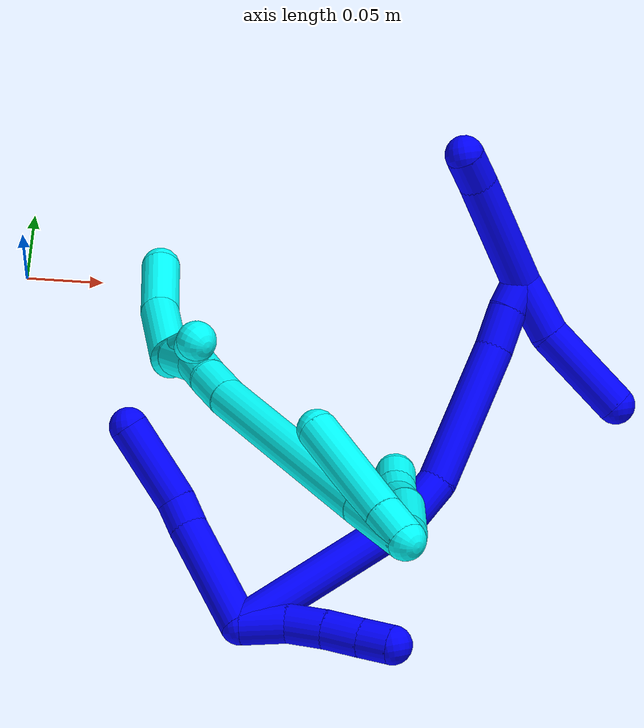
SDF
<sdf version="1.7">
 <world name="default">
  <model name="1">
   <static>0</static>
   <link name="1">
    <collision name="collision-cylinder-e_1_2_8">
     <pose>0.017399 0.005508 -0.032552 -2.97398 0.485023 -2.48688</pose>
     <geometry><cylinder><radius>0.0125</radius><length>0.074638</length></cylinder></geometry>
     <surface>
      <friction><ode><mu>1.16</mu><mu2>1.16</mu2><slip1>0</slip1><slip2>0</slip2></ode></friction>
      <contact><ode><kp>1e+06</kp><kd>1</kd><max_vel>0</max_vel><min_depth>0.001</min_depth></ode></contact>
     </surface>
    </collision>
    <visual name="visual-cylinder-e_1_2_8">
     <pose>0.017399 0.005508 -0.032552 -2.97398 0.485023 -2.48688</pose>
     <geometry><cylinder><radius>0.0125</radius><length>0.074638</length></cylinder></geometry>
     <material><ambient>0 0 1 1</ambient></material>
    </visual>
    <collision name="collision-cylinder-e_2_8_9">
     <pose>0.03836 0.011731 -0.074585 -3.06633 0.358412 -2.73175</pose>
     <geometry><cylinder><radius>0.0125</radius><length>0.020306</length></cylinder></geometry>
     <surface>
      <friction><ode><mu>1.16</mu><mu2>1.16</mu2><slip1>0</slip1><slip2>0</slip2></ode></friction>
      <contact><ode><kp>1e+06</kp><kd>1</kd><max_vel>0</max_vel><min_depth>0.001</min_depth></ode></contact>
     </surface>
    </collision>
    <visual name="visual-cylinder-e_2_8_9">
     <pose>0.03836 0.011731 -0.074585 -3.06633 0.358412 -2.73175</pose>
     <geometry><cylinder><radius>0.0125</radius><length>0.020306</length></cylinder></geometry>
     <material><ambient>0 0 1 1</ambient></material>
    </visual>
    <collision name="collision-cylinder-e_3_9_6">
     <pose>0.049936 0.005338 -0.109424 2.86833 0.295435 1.64979</pose>
     <geometry><cylinder><radius>0.0125</radius><length>0.055056</length></cylinder></geometry>
     <surface>
      <friction><ode><mu>1.16</mu><mu2>1.16</mu2><slip1>0</slip1><slip2>0</slip2></ode></friction>
      <contact><ode><kp>1e+06</kp><kd>1</kd><max_vel>0</max_vel><min_depth>0.001</min_depth></ode></contact>
     </surface>
    </collision>
    <visual name="visual-cylinder-e_3_9_6">
     <pose>0.049936 0.005338 -0.109424 2.86833 0.295435 1.64979</pose>
     <geometry><cylinder><radius>0.0125</radius><length>0.055056</length></cylinder></geometry>
     <material><ambient>0 0 1 1</ambient></material>
    </visual>
    <collision name="collision-cylinder-e_1_2_10">
     <pose>-0.012577 0.007822 0.001951 -1.32632 -1.00079 0.807398</pose>
     <geometry><cylinder><radius>0.0125</radius><length>0.029877</length></cylinder></geometry>
     <surface>
      <friction><ode><mu>1.16</mu><mu2>1.16</mu2><slip1>0</slip1><slip2>0</slip2></ode></friction>
      <contact><ode><kp>1e+06</kp><kd>1</kd><max_vel>0</max_vel><min_depth>0.001</min_depth></ode></contact>
     </surface>
    </collision>
    <visual name="visual-cylinder-e_1_2_10">
     <pose>-0.012577 0.007822 0.001951 -1.32632 -1.00079 0.807398</pose>
     <geometry><cylinder><radius>0.0125</radius><length>0.029877</length></cylinder></geometry>
     <material><ambient>0 0 1 1</ambient></material>
    </visual>
    <collision name="collision-cylinder-e_2_10_11">
     <pose>-0.036754 0.019194 0.007849 -0.732612 -1.14163 0.483042</pose>
     <geometry><cylinder><radius>0.0125</radius><length>0.025515</length></cylinder></geometry>
     <surface>
      <friction><ode><mu>1.16</mu><mu2>1.16</mu2><slip1>0</slip1><slip2>0</slip2></ode></friction>
      <contact><ode><kp>1e+06</kp><kd>1</kd><max_vel>0</max_vel><min_depth>0.001</min_depth></ode></contact>
     </surface>
    </collision>
    <visual name="visual-cylinder-e_2_10_11">
     <pose>-0.036754 0.019194 0.007849 -0.732612 -1.14163 0.483042</pose>
     <geometry><cylinder><radius>0.0125</radius><length>0.025515</length></cylinder></geometry>
     <material><ambient>0 0 1 1</ambient></material>
    </visual>
    <collision name="collision-cylinder-e_3_11_12">
     <pose>-0.059288 0.025647 0.016328 -0.569625 -1.11339 0.360462</pose>
     <geometry><cylinder><radius>0.0125</radius><length>0.024374</length></cylinder></geometry>
     <surface>
      <friction><ode><mu>1.16</mu><mu2>1.16</mu2><slip1>0</slip1><slip2>0</slip2></ode></friction>
      <contact><ode><kp>1e+06</kp><kd>1</kd><max_vel>0</max_vel><min_depth>0.001</min_depth></ode></contact>
     </surface>
    </collision>
    <visual name="visual-cylinder-e_3_11_12">
     <pose>-0.059288 0.025647 0.016328 -0.569625 -1.11339 0.360462</pose>
     <geometry><cylinder><radius>0.0125</radius><length>0.024374</length></cylinder></geometry>
     <material><ambient>0 0 1 1</ambient></material>
    </visual>
    <collision name="collision-cylinder-e_4_12_5">
     <pose>-0.079464 0.030573 0.024447 -0.513728 -1.15155 0.33777</pose>
     <geometry><cylinder><radius>0.0125</radius><length>0.020234</length></cylinder></geometry>
     <surface>
      <friction><ode><mu>1.16</mu><mu2>1.16</mu2><slip1>0</slip1><slip2>0</slip2></ode></friction>
      <contact><ode><kp>1e+06</kp><kd>1</kd><max_vel>0</max_vel><min_depth>0.001</min_depth></ode></contact>
     </surface>
    </collision>
    <visual name="visual-cylinder-e_4_12_5">
     <pose>-0.079464 0.030573 0.024447 -0.513728 -1.15155 0.33777</pose>
     <geometry><cylinder><radius>0.0125</radius><length>0.020234</length></cylinder></geometry>
     <material><ambient>0 0 1 1</ambient></material>
    </visual>
    <collision name="collision-cylinder-e_1_2_13">
     <pose>-0.037778 0.042914 -0.022683 -2.05703 -0.661359 1.03574</pose>
     <geometry><cylinder><radius>0.0125</radius><length>0.123017</length></cylinder></geometry>
     <surface>
      <friction><ode><mu>1.16</mu><mu2>1.16</mu2><slip1>0</slip1><slip2>0</slip2></ode></friction>
      <contact><ode><kp>1e+06</kp><kd>1</kd><max_vel>0</max_vel><min_depth>0.001</min_depth></ode></contact>
     </surface>
    </collision>
    <visual name="visual-cylinder-e_1_2_13">
     <pose>-0.037778 0.042914 -0.022683 -2.05703 -0.661359 1.03574</pose>
     <geometry><cylinder><radius>0.0125</radius><length>0.123017</length></cylinder></geometry>
     <material><ambient>0 0 1 1</ambient></material>
    </visual>
    <collision name="collision-cylinder-e_2_13_14">
     <pose>-0.082355 0.098085 -0.056064 -2.28839 -0.395854 0.831106</pose>
     <geometry><cylinder><radius>0.0125</radius><length>0.035264</length></cylinder></geometry>
     <surface>
      <friction><ode><mu>1.16</mu><mu2>1.16</mu2><slip1>0</slip1><slip2>0</slip2></ode></friction>
      <contact><ode><kp>1e+06</kp><kd>1</kd><max_vel>0</max_vel><min_depth>0.001</min_depth></ode></contact>
     </surface>
    </collision>
    <visual name="visual-cylinder-e_2_13_14">
     <pose>-0.082355 0.098085 -0.056064 -2.28839 -0.395854 0.831106</pose>
     <geometry><cylinder><radius>0.0125</radius><length>0.035264</length></cylinder></geometry>
     <material><ambient>0 0 1 1</ambient></material>
    </visual>
    <collision name="collision-cylinder-e_3_14_15">
     <pose>-0.103852 0.133269 -0.105343 -2.6054 -0.316493 1.05252</pose>
     <geometry><cylinder><radius>0.0125</radius><length>0.094451</length></cylinder></geometry>
     <surface>
      <friction><ode><mu>1.16</mu><mu2>1.16</mu2><slip1>0</slip1><slip2>0</slip2></ode></friction>
      <contact><ode><kp>1e+06</kp><kd>1</kd><max_vel>0</max_vel><min_depth>0.001</min_depth></ode></contact>
     </surface>
    </collision>
    <visual name="visual-cylinder-e_3_14_15">
     <pose>-0.103852 0.133269 -0.105343 -2.6054 -0.316493 1.05252</pose>
     <geometry><cylinder><radius>0.0125</radius><length>0.094451</length></cylinder></geometry>
     <material><ambient>0 0 1 1</ambient></material>
    </visual>
    <collision name="collision-cylinder-e_4_15_16">
     <pose>-0.122816 0.161552 -0.155616 -2.71205 -0.320282 1.27476</pose>
     <geometry><cylinder><radius>0.0125</radius><length>0.027097</length></cylinder></geometry>
     <surface>
      <friction><ode><mu>1.16</mu><mu2>1.16</mu2><slip1>0</slip1><slip2>0</slip2></ode></friction>
      <contact><ode><kp>1e+06</kp><kd>1</kd><max_vel>0</max_vel><min_depth>0.001</min_depth></ode></contact>
     </surface>
    </collision>
    <visual name="visual-cylinder-e_4_15_16">
     <pose>-0.122816 0.161552 -0.155616 -2.71205 -0.320282 1.27476</pose>
     <geometry><cylinder><radius>0.0125</radius><length>0.027097</length></cylinder></geometry>
     <material><ambient>0 0 1 1</ambient></material>
    </visual>
    <collision name="collision-cylinder-e_5_16_1">
     <pose>-0.13109 0.171568 -0.175302 -2.61375 -0.408805 1.30875</pose>
     <geometry><cylinder><radius>0.0125</radius><length>0.020171</length></cylinder></geometry>
     <surface>
      <friction><ode><mu>1.16</mu><mu2>1.16</mu2><slip1>0</slip1><slip2>0</slip2></ode></friction>
      <contact><ode><kp>1e+06</kp><kd>1</kd><max_vel>0</max_vel><min_depth>0.001</min_depth></ode></contact>
     </surface>
    </collision>
    <visual name="visual-cylinder-e_5_16_1">
     <pose>-0.13109 0.171568 -0.175302 -2.61375 -0.408805 1.30875</pose>
     <geometry><cylinder><radius>0.0125</radius><length>0.020171</length></cylinder></geometry>
     <material><ambient>0 0 1 1</ambient></material>
    </visual>
    <collision name="collision-cylinder-e_1_1_17">
     <pose>-0.139025 0.155519 -0.215409 2.56878 -0.102363 -0.344438</pose>
     <geometry><cylinder><radius>0.0125</radius><length>0.076825</length></cylinder></geometry>
     <surface>
      <friction><ode><mu>1.16</mu><mu2>1.16</mu2><slip1>0</slip1><slip2>0</slip2></ode></friction>
      <contact><ode><kp>1e+06</kp><kd>1</kd><max_vel>0</max_vel><min_depth>0.001</min_depth></ode></contact>
     </surface>
    </collision>
    <visual name="visual-cylinder-e_1_1_17">
     <pose>-0.139025 0.155519 -0.215409 2.56878 -0.102363 -0.344438</pose>
     <geometry><cylinder><radius>0.0125</radius><length>0.076825</length></cylinder></geometry>
     <material><ambient>0 0 1 1</ambient></material>
    </visual>
    <collision name="collision-cylinder-e_2_17_4">
     <pose>-0.144708 0.127451 -0.256299 2.44403 -0.152292 -0.413604</pose>
     <geometry><cylinder><radius>0.0125</radius><length>0.023175</length></cylinder></geometry>
     <surface>
      <friction><ode><mu>1.16</mu><mu2>1.16</mu2><slip1>0</slip1><slip2>0</slip2></ode></friction>
      <contact><ode><kp>1e+06</kp><kd>1</kd><max_vel>0</max_vel><min_depth>0.001</min_depth></ode></contact>
     </surface>
    </collision>
    <visual name="visual-cylinder-e_2_17_4">
     <pose>-0.144708 0.127451 -0.256299 2.44403 -0.152292 -0.413604</pose>
     <geometry><cylinder><radius>0.0125</radius><length>0.023175</length></cylinder></geometry>
     <material><ambient>0 0 1 1</ambient></material>
    </visual>
    <collision name="collision-cylinder-e_1_1_18">
     <pose>-0.13863 0.181469 -0.165689 -0.289247 -0.189856 0.027732</pose>
     <geometry><cylinder><radius>0.0125</radius><length>0.037414</length></cylinder></geometry>
     <surface>
      <friction><ode><mu>1.16</mu><mu2>1.16</mu2><slip1>0</slip1><slip2>0</slip2></ode></friction>
      <contact><ode><kp>1e+06</kp><kd>1</kd><max_vel>0</max_vel><min_depth>0.001</min_depth></ode></contact>
     </surface>
    </collision>
    <visual name="visual-cylinder-e_1_1_18">
     <pose>-0.13863 0.181469 -0.165689 -0.289247 -0.189856 0.027732</pose>
     <geometry><cylinder><radius>0.0125</radius><length>0.037414</length></cylinder></geometry>
     <material><ambient>0 0 1 1</ambient></material>
    </visual>
    <collision name="collision-cylinder-e_2_18_3">
     <pose>-0.154189 0.199432 -0.122145 -0.456026 -0.394551 0.092695</pose>
     <geometry><cylinder><radius>0.0125</radius><length>0.062586</length></cylinder></geometry>
     <surface>
      <friction><ode><mu>1.16</mu><mu2>1.16</mu2><slip1>0</slip1><slip2>0</slip2></ode></friction>
      <contact><ode><kp>1e+06</kp><kd>1</kd><max_vel>0</max_vel><min_depth>0.001</min_depth></ode></contact>
     </surface>
    </collision>
    <visual name="visual-cylinder-e_2_18_3">
     <pose>-0.154189 0.199432 -0.122145 -0.456026 -0.394551 0.092695</pose>
     <geometry><cylinder><radius>0.0125</radius><length>0.062586</length></cylinder></geometry>
     <material><ambient>0 0 1 1</ambient></material>
    </visual>
    <collision name="collision-sphere-3">
     <pose>-0.166218 0.212154 -0.096208 0 -0 0</pose>
     <geometry><sphere><radius>0.0125</radius></sphere></geometry>
     <surface>
      <friction><ode><mu>1.16</mu><mu2>1.16</mu2><slip1>0</slip1><slip2>0</slip2></ode></friction>
      <contact><ode><kp>1e+06</kp><kd>1</kd><max_vel>0</max_vel><min_depth>0.001</min_depth></ode></contact>
     </surface>
    </collision>
    <visual name="visual-sphere-3">
     <pose>-0.166218 0.212154 -0.096208 0 -0 0</pose>
     <geometry><sphere><radius>0.0125</radius></sphere></geometry>
     <material><ambient>0 0 1 1</ambient></material>
    </visual>
    <collision name="collision-sphere-11">
     <pose>-0.048354 0.022744 0.011795 0 -0 0</pose>
     <geometry><sphere><radius>0.0125</radius></sphere></geometry>
     <surface>
      <friction><ode><mu>1.16</mu><mu2>1.16</mu2><slip1>0</slip1><slip2>0</slip2></ode></friction>
      <contact><ode><kp>1e+06</kp><kd>1</kd><max_vel>0</max_vel><min_depth>0.001</min_depth></ode></contact>
     </surface>
    </collision>
    <visual name="visual-sphere-11">
     <pose>-0.048354 0.022744 0.011795 0 -0 0</pose>
     <geometry><sphere><radius>0.0125</radius></sphere></geometry>
     <material><ambient>0 0 1 1</ambient></material>
    </visual>
    <collision name="collision-sphere-10">
     <pose>-0.025153 0.015643 0.003903 0 -0 0</pose>
     <geometry><sphere><radius>0.0125</radius></sphere></geometry>
     <surface>
      <friction><ode><mu>1.16</mu><mu2>1.16</mu2><slip1>0</slip1><slip2>0</slip2></ode></friction>
      <contact><ode><kp>1e+06</kp><kd>1</kd><max_vel>0</max_vel><min_depth>0.001</min_depth></ode></contact>
     </surface>
    </collision>
    <visual name="visual-sphere-10">
     <pose>-0.025153 0.015643 0.003903 0 -0 0</pose>
     <geometry><sphere><radius>0.0125</radius></sphere></geometry>
     <material><ambient>0 0 1 1</ambient></material>
    </visual>
    <collision name="collision-sphere-6">
     <pose>0.057951 -0.001769 -0.134782 0 -0 0</pose>
     <geometry><sphere><radius>0.0125</radius></sphere></geometry>
     <surface>
      <friction><ode><mu>1.16</mu><mu2>1.16</mu2><slip1>0</slip1><slip2>0</slip2></ode></friction>
      <contact><ode><kp>1e+06</kp><kd>1</kd><max_vel>0</max_vel><min_depth>0.001</min_depth></ode></contact>
     </surface>
    </collision>
    <visual name="visual-sphere-6">
     <pose>0.057951 -0.001769 -0.134782 0 -0 0</pose>
     <geometry><sphere><radius>0.0125</radius></sphere></geometry>
     <material><ambient>0 0 1 1</ambient></material>
    </visual>
    <collision name="collision-sphere-9">
     <pose>0.041921 0.012446 -0.084066 0 -0 0</pose>
     <geometry><sphere><radius>0.0125</radius></sphere></geometry>
     <surface>
      <friction><ode><mu>1.16</mu><mu2>1.16</mu2><slip1>0</slip1><slip2>0</slip2></ode></friction>
      <contact><ode><kp>1e+06</kp><kd>1</kd><max_vel>0</max_vel><min_depth>0.001</min_depth></ode></contact>
     </surface>
    </collision>
    <visual name="visual-sphere-9">
     <pose>0.041921 0.012446 -0.084066 0 -0 0</pose>
     <geometry><sphere><radius>0.0125</radius></sphere></geometry>
     <material><ambient>0 0 1 1</ambient></material>
    </visual>
    <collision name="collision-sphere-2">
     <geometry><sphere><radius>0.0125</radius></sphere></geometry>
     <surface>
      <friction><ode><mu>1.16</mu><mu2>1.16</mu2><slip1>0</slip1><slip2>0</slip2></ode></friction>
      <contact><ode><kp>1e+06</kp><kd>1</kd><max_vel>0</max_vel><min_depth>0.001</min_depth></ode></contact>
     </surface>
    </collision>
    <visual name="visual-sphere-2">
     <geometry><sphere><radius>0.0125</radius></sphere></geometry>
     <material><ambient>0 0 1 1</ambient></material>
    </visual>
    <collision name="collision-sphere-8">
     <pose>0.034798 0.011016 -0.065104 0 -0 0</pose>
     <geometry><sphere><radius>0.0125</radius></sphere></geometry>
     <surface>
      <friction><ode><mu>1.16</mu><mu2>1.16</mu2><slip1>0</slip1><slip2>0</slip2></ode></friction>
      <contact><ode><kp>1e+06</kp><kd>1</kd><max_vel>0</max_vel><min_depth>0.001</min_depth></ode></contact>
     </surface>
    </collision>
    <visual name="visual-sphere-8">
     <pose>0.034798 0.011016 -0.065104 0 -0 0</pose>
     <geometry><sphere><radius>0.0125</radius></sphere></geometry>
     <material><ambient>0 0 1 1</ambient></material>
    </visual>
    <collision name="collision-sphere-12">
     <pose>-0.070223 0.028549 0.02086 0 -0 0</pose>
     <geometry><sphere><radius>0.0125</radius></sphere></geometry>
     <surface>
      <friction><ode><mu>1.16</mu><mu2>1.16</mu2><slip1>0</slip1><slip2>0</slip2></ode></friction>
      <contact><ode><kp>1e+06</kp><kd>1</kd><max_vel>0</max_vel><min_depth>0.001</min_depth></ode></contact>
     </surface>
    </collision>
    <visual name="visual-sphere-12">
     <pose>-0.070223 0.028549 0.02086 0 -0 0</pose>
     <geometry><sphere><radius>0.0125</radius></sphere></geometry>
     <material><ambient>0 0 1 1</ambient></material>
    </visual>
    <collision name="collision-sphere-5">
     <pose>-0.088705 0.032597 0.028034 0 -0 0</pose>
     <geometry><sphere><radius>0.0125</radius></sphere></geometry>
     <surface>
      <friction><ode><mu>1.16</mu><mu2>1.16</mu2><slip1>0</slip1><slip2>0</slip2></ode></friction>
      <contact><ode><kp>1e+06</kp><kd>1</kd><max_vel>0</max_vel><min_depth>0.001</min_depth></ode></contact>
     </surface>
    </collision>
    <visual name="visual-sphere-5">
     <pose>-0.088705 0.032597 0.028034 0 -0 0</pose>
     <geometry><sphere><radius>0.0125</radius></sphere></geometry>
     <material><ambient>0 0 1 1</ambient></material>
    </visual>
    <collision name="collision-sphere-13">
     <pose>-0.075556 0.085828 -0.045366 0 -0 0</pose>
     <geometry><sphere><radius>0.0125</radius></sphere></geometry>
     <surface>
      <friction><ode><mu>1.16</mu><mu2>1.16</mu2><slip1>0</slip1><slip2>0</slip2></ode></friction>
      <contact><ode><kp>1e+06</kp><kd>1</kd><max_vel>0</max_vel><min_depth>0.001</min_depth></ode></contact>
     </surface>
    </collision>
    <visual name="visual-sphere-13">
     <pose>-0.075556 0.085828 -0.045366 0 -0 0</pose>
     <geometry><sphere><radius>0.0125</radius></sphere></geometry>
     <material><ambient>0 0 1 1</ambient></material>
    </visual>
    <collision name="collision-sphere-14">
     <pose>-0.089154 0.110342 -0.066762 0 -0 0</pose>
     <geometry><sphere><radius>0.0125</radius></sphere></geometry>
     <surface>
      <friction><ode><mu>1.16</mu><mu2>1.16</mu2><slip1>0</slip1><slip2>0</slip2></ode></friction>
      <contact><ode><kp>1e+06</kp><kd>1</kd><max_vel>0</max_vel><min_depth>0.001</min_depth></ode></contact>
     </surface>
    </collision>
    <visual name="visual-sphere-14">
     <pose>-0.089154 0.110342 -0.066762 0 -0 0</pose>
     <geometry><sphere><radius>0.0125</radius></sphere></geometry>
     <material><ambient>0 0 1 1</ambient></material>
    </visual>
    <collision name="collision-sphere-15">
     <pose>-0.11855 0.156197 -0.143924 0 -0 0</pose>
     <geometry><sphere><radius>0.0125</radius></sphere></geometry>
     <surface>
      <friction><ode><mu>1.16</mu><mu2>1.16</mu2><slip1>0</slip1><slip2>0</slip2></ode></friction>
      <contact><ode><kp>1e+06</kp><kd>1</kd><max_vel>0</max_vel><min_depth>0.001</min_depth></ode></contact>
     </surface>
    </collision>
    <visual name="visual-sphere-15">
     <pose>-0.11855 0.156197 -0.143924 0 -0 0</pose>
     <geometry><sphere><radius>0.0125</radius></sphere></geometry>
     <material><ambient>0 0 1 1</ambient></material>
    </visual>
    <collision name="collision-sphere-16">
     <pose>-0.127081 0.166907 -0.167307 0 -0 0</pose>
     <geometry><sphere><radius>0.0125</radius></sphere></geometry>
     <surface>
      <friction><ode><mu>1.16</mu><mu2>1.16</mu2><slip1>0</slip1><slip2>0</slip2></ode></friction>
      <contact><ode><kp>1e+06</kp><kd>1</kd><max_vel>0</max_vel><min_depth>0.001</min_depth></ode></contact>
     </surface>
    </collision>
    <visual name="visual-sphere-16">
     <pose>-0.127081 0.166907 -0.167307 0 -0 0</pose>
     <geometry><sphere><radius>0.0125</radius></sphere></geometry>
     <material><ambient>0 0 1 1</ambient></material>
    </visual>
    <collision name="collision-sphere-1">
     <pose>-0.135099 0.17623 -0.183296 0 -0 0</pose>
     <geometry><sphere><radius>0.0125</radius></sphere></geometry>
     <surface>
      <friction><ode><mu>1.16</mu><mu2>1.16</mu2><slip1>0</slip1><slip2>0</slip2></ode></friction>
      <contact><ode><kp>1e+06</kp><kd>1</kd><max_vel>0</max_vel><min_depth>0.001</min_depth></ode></contact>
     </surface>
    </collision>
    <visual name="visual-sphere-1">
     <pose>-0.135099 0.17623 -0.183296 0 -0 0</pose>
     <geometry><sphere><radius>0.0125</radius></sphere></geometry>
     <material><ambient>0 0 1 1</ambient></material>
    </visual>
    <collision name="collision-sphere-18">
     <pose>-0.14216 0.186709 -0.148081 0 -0 0</pose>
     <geometry><sphere><radius>0.0125</radius></sphere></geometry>
     <surface>
      <friction><ode><mu>1.16</mu><mu2>1.16</mu2><slip1>0</slip1><slip2>0</slip2></ode></friction>
      <contact><ode><kp>1e+06</kp><kd>1</kd><max_vel>0</max_vel><min_depth>0.001</min_depth></ode></contact>
     </surface>
    </collision>
    <visual name="visual-sphere-18">
     <pose>-0.14216 0.186709 -0.148081 0 -0 0</pose>
     <geometry><sphere><radius>0.0125</radius></sphere></geometry>
     <material><ambient>0 0 1 1</ambient></material>
    </visual>
    <collision name="collision-sphere-17">
     <pose>-0.14295 0.134808 -0.247521 0 -0 0</pose>
     <geometry><sphere><radius>0.0125</radius></sphere></geometry>
     <surface>
      <friction><ode><mu>1.16</mu><mu2>1.16</mu2><slip1>0</slip1><slip2>0</slip2></ode></friction>
      <contact><ode><kp>1e+06</kp><kd>1</kd><max_vel>0</max_vel><min_depth>0.001</min_depth></ode></contact>
     </surface>
    </collision>
    <visual name="visual-sphere-17">
     <pose>-0.14295 0.134808 -0.247521 0 -0 0</pose>
     <geometry><sphere><radius>0.0125</radius></sphere></geometry>
     <material><ambient>0 0 1 1</ambient></material>
    </visual>
    <collision name="collision-sphere-4">
     <pose>-0.146465 0.120095 -0.265077 0 -0 0</pose>
     <geometry><sphere><radius>0.0125</radius></sphere></geometry>
     <surface>
      <friction><ode><mu>1.16</mu><mu2>1.16</mu2><slip1>0</slip1><slip2>0</slip2></ode></friction>
      <contact><ode><kp>1e+06</kp><kd>1</kd><max_vel>0</max_vel><min_depth>0.001</min_depth></ode></contact>
     </surface>
    </collision>
    <visual name="visual-sphere-4">
     <pose>-0.146465 0.120095 -0.265077 0 -0 0</pose>
     <geometry><sphere><radius>0.0125</radius></sphere></geometry>
     <material><ambient>0 0 1 1</ambient></material>
    </visual>
    <inertial>
     <pose>-0.068991 0.088329 -0.090159 0 -0 0</pose>
     <mass>0.75</mass>
     <inertia>
      <ixx>0.00029</ixx>
      <ixy>0</ixy>
      <ixz>0</ixz>
      <iyy>0.000227</iyy>
      <iyz>0</iyz>
      <izz>-4.3e-05</izz>
     </inertia>
    </inertial>
   </link>
   <pose>0.162112 -0.256987 0.012392 -2.22549 0.615618 3.00043</pose>
  </model>
  <model name="3">
   <static>0</static>
   <link name="3">
    <collision name="collision-cylinder-e_1_2_8">
     <pose>0.002807 0.013001 -0.013364 -2.36994 0.149445 -0.364519</pose>
     <geometry><cylinder><radius>0.0125</radius><length>0.037709</length></cylinder></geometry>
     <surface>
      <friction><ode><mu>1.16</mu><mu2>1.16</mu2><slip1>0</slip1><slip2>0</slip2></ode></friction>
      <contact><ode><kp>1e+06</kp><kd>1</kd><max_vel>0</max_vel><min_depth>0.001</min_depth></ode></contact>
     </surface>
    </collision>
    <visual name="visual-cylinder-e_1_2_8">
     <pose>0.002807 0.013001 -0.013364 -2.36994 0.149445 -0.364519</pose>
     <geometry><cylinder><radius>0.0125</radius><length>0.037709</length></cylinder></geometry>
     <material><ambient>0.003922 1 0.996078 1</ambient></material>
    </visual>
    <collision name="collision-cylinder-e_2_8_9">
     <pose>0.003833 0.041225 -0.046642 -2.48894 -0.070956 0.20899</pose>
     <geometry><cylinder><radius>0.0125</radius><length>0.050258</length></cylinder></geometry>
     <surface>
      <friction><ode><mu>1.16</mu><mu2>1.16</mu2><slip1>0</slip1><slip2>0</slip2></ode></friction>
      <contact><ode><kp>1e+06</kp><kd>1</kd><max_vel>0</max_vel><min_depth>0.001</min_depth></ode></contact>
     </surface>
    </collision>
    <visual name="visual-cylinder-e_2_8_9">
     <pose>0.003833 0.041225 -0.046642 -2.48894 -0.070956 0.20899</pose>
     <geometry><cylinder><radius>0.0125</radius><length>0.050258</length></cylinder></geometry>
     <material><ambient>0.003922 1 0.996078 1</ambient></material>
    </visual>
    <collision name="collision-cylinder-e_3_9_10">
     <pose>0.003072 0.061695 -0.07551 -2.61149 0.098042 -0.357625</pose>
     <geometry><cylinder><radius>0.0125</radius><length>0.020857</length></cylinder></geometry>
     <surface>
      <friction><ode><mu>1.16</mu><mu2>1.16</mu2><slip1>0</slip1><slip2>0</slip2></ode></friction>
      <contact><ode><kp>1e+06</kp><kd>1</kd><max_vel>0</max_vel><min_depth>0.001</min_depth></ode></contact>
     </surface>
    </collision>
    <visual name="visual-cylinder-e_3_9_10">
     <pose>0.003072 0.061695 -0.07551 -2.61149 0.098042 -0.357625</pose>
     <geometry><cylinder><radius>0.0125</radius><length>0.020857</length></cylinder></geometry>
     <material><ambient>0.003922 1 0.996078 1</ambient></material>
    </visual>
    <collision name="collision-cylinder-e_4_10_11">
     <pose>0.003139 0.072661 -0.092669 -2.53294 -0.095087 0.300691</pose>
     <geometry><cylinder><radius>0.0125</radius><length>0.020093</length></cylinder></geometry>
     <surface>
      <friction><ode><mu>1.16</mu><mu2>1.16</mu2><slip1>0</slip1><slip2>0</slip2></ode></friction>
      <contact><ode><kp>1e+06</kp><kd>1</kd><max_vel>0</max_vel><min_depth>0.001</min_depth></ode></contact>
     </surface>
    </collision>
    <visual name="visual-cylinder-e_4_10_11">
     <pose>0.003139 0.072661 -0.092669 -2.53294 -0.095087 0.300691</pose>
     <geometry><cylinder><radius>0.0125</radius><length>0.020093</length></cylinder></geometry>
     <material><ambient>0.003922 1 0.996078 1</ambient></material>
    </visual>
    <collision name="collision-cylinder-e_5_11_6">
     <pose>-3.7e-05 0.084387 -0.109245 -2.51908 -0.212446 0.640067</pose>
     <geometry><cylinder><radius>0.0125</radius><length>0.021082</length></cylinder></geometry>
     <surface>
      <friction><ode><mu>1.16</mu><mu2>1.16</mu2><slip1>0</slip1><slip2>0</slip2></ode></friction>
      <contact><ode><kp>1e+06</kp><kd>1</kd><max_vel>0</max_vel><min_depth>0.001</min_depth></ode></contact>
     </surface>
    </collision>
    <visual name="visual-cylinder-e_5_11_6">
     <pose>-3.7e-05 0.084387 -0.109245 -2.51908 -0.212446 0.640067</pose>
     <geometry><cylinder><radius>0.0125</radius><length>0.021082</length></cylinder></geometry>
     <material><ambient>0.003922 1 0.996078 1</ambient></material>
    </visual>
    <collision name="collision-cylinder-e_1_2_12">
     <pose>-0.003755 -0.001007 -0.011004 3.0503 -0.327596 -2.60232</pose>
     <geometry><cylinder><radius>0.0125</radius><length>0.023342</length></cylinder></geometry>
     <surface>
      <friction><ode><mu>1.16</mu><mu2>1.16</mu2><slip1>0</slip1><slip2>0</slip2></ode></friction>
      <contact><ode><kp>1e+06</kp><kd>1</kd><max_vel>0</max_vel><min_depth>0.001</min_depth></ode></contact>
     </surface>
    </collision>
    <visual name="visual-cylinder-e_1_2_12">
     <pose>-0.003755 -0.001007 -0.011004 3.0503 -0.327596 -2.60232</pose>
     <geometry><cylinder><radius>0.0125</radius><length>0.023342</length></cylinder></geometry>
     <material><ambient>0.003922 1 0.996078 1</ambient></material>
    </visual>
    <collision name="collision-cylinder-e_2_12_5">
     <pose>-0.019856 -0.003829 -0.05825 3.09157 -0.327936 -2.84145</pose>
     <geometry><cylinder><radius>0.0125</radius><length>0.076658</length></cylinder></geometry>
     <surface>
      <friction><ode><mu>1.16</mu><mu2>1.16</mu2><slip1>0</slip1><slip2>0</slip2></ode></friction>
      <contact><ode><kp>1e+06</kp><kd>1</kd><max_vel>0</max_vel><min_depth>0.001</min_depth></ode></contact>
     </surface>
    </collision>
    <visual name="visual-cylinder-e_2_12_5">
     <pose>-0.019856 -0.003829 -0.05825 3.09157 -0.327936 -2.84145</pose>
     <geometry><cylinder><radius>0.0125</radius><length>0.076658</length></cylinder></geometry>
     <material><ambient>0.003922 1 0.996078 1</ambient></material>
    </visual>
    <collision name="collision-cylinder-e_1_2_13">
     <pose>-0.001741 0.00019 -0.022835 -3.13325 -0.076088 2.92334</pose>
     <geometry><cylinder><radius>0.0125</radius><length>0.045804</length></cylinder></geometry>
     <surface>
      <friction><ode><mu>1.16</mu><mu2>1.16</mu2><slip1>0</slip1><slip2>0</slip2></ode></friction>
      <contact><ode><kp>1e+06</kp><kd>1</kd><max_vel>0</max_vel><min_depth>0.001</min_depth></ode></contact>
     </surface>
    </collision>
    <visual name="visual-cylinder-e_1_2_13">
     <pose>-0.001741 0.00019 -0.022835 -3.13325 -0.076088 2.92334</pose>
     <geometry><cylinder><radius>0.0125</radius><length>0.045804</length></cylinder></geometry>
     <material><ambient>0.003922 1 0.996078 1</ambient></material>
    </visual>
    <collision name="collision-cylinder-e_2_13_14">
     <pose>-0.009572 0.003901 -0.119714 -3.09409 -0.081968 2.09151</pose>
     <geometry><cylinder><radius>0.0125</radius><length>0.148754</length></cylinder></geometry>
     <surface>
      <friction><ode><mu>1.16</mu><mu2>1.16</mu2><slip1>0</slip1><slip2>0</slip2></ode></friction>
      <contact><ode><kp>1e+06</kp><kd>1</kd><max_vel>0</max_vel><min_depth>0.001</min_depth></ode></contact>
     </surface>
    </collision>
    <visual name="visual-cylinder-e_2_13_14">
     <pose>-0.009572 0.003901 -0.119714 -3.09409 -0.081968 2.09151</pose>
     <geometry><cylinder><radius>0.0125</radius><length>0.148754</length></cylinder></geometry>
     <material><ambient>0.003922 1 0.996078 1</ambient></material>
    </visual>
    <collision name="collision-cylinder-e_3_14_15">
     <pose>-0.017587 0.008874 -0.206531 -3.02824 -0.148656 1.83941</pose>
     <geometry><cylinder><radius>0.0125</radius><length>0.025999</length></cylinder></geometry>
     <surface>
      <friction><ode><mu>1.16</mu><mu2>1.16</mu2><slip1>0</slip1><slip2>0</slip2></ode></friction>
      <contact><ode><kp>1e+06</kp><kd>1</kd><max_vel>0</max_vel><min_depth>0.001</min_depth></ode></contact>
     </surface>
    </collision>
    <visual name="visual-cylinder-e_3_14_15">
     <pose>-0.017587 0.008874 -0.206531 -3.02824 -0.148656 1.83941</pose>
     <geometry><cylinder><radius>0.0125</radius><length>0.025999</length></cylinder></geometry>
     <material><ambient>0.003922 1 0.996078 1</ambient></material>
    </visual>
    <collision name="collision-cylinder-e_4_15_16">
     <pose>-0.020534 0.013436 -0.230267 -2.86535 -0.089441 0.622907</pose>
     <geometry><cylinder><radius>0.0125</radius><length>0.022879</length></cylinder></geometry>
     <surface>
      <friction><ode><mu>1.16</mu><mu2>1.16</mu2><slip1>0</slip1><slip2>0</slip2></ode></friction>
      <contact><ode><kp>1e+06</kp><kd>1</kd><max_vel>0</max_vel><min_depth>0.001</min_depth></ode></contact>
     </surface>
    </collision>
    <visual name="visual-cylinder-e_4_15_16">
     <pose>-0.020534 0.013436 -0.230267 -2.86535 -0.089441 0.622907</pose>
     <geometry><cylinder><radius>0.0125</radius><length>0.022879</length></cylinder></geometry>
     <material><ambient>0.003922 1 0.996078 1</ambient></material>
    </visual>
    <collision name="collision-cylinder-e_5_16_17">
     <pose>-0.018184 0.022133 -0.257613 -2.81282 0.19237 -1.05361</pose>
     <geometry><cylinder><radius>0.0125</radius><length>0.035273</length></cylinder></geometry>
     <surface>
      <friction><ode><mu>1.16</mu><mu2>1.16</mu2><slip1>0</slip1><slip2>0</slip2></ode></friction>
      <contact><ode><kp>1e+06</kp><kd>1</kd><max_vel>0</max_vel><min_depth>0.001</min_depth></ode></contact>
     </surface>
    </collision>
    <visual name="visual-cylinder-e_5_16_17">
     <pose>-0.018184 0.022133 -0.257613 -2.81282 0.19237 -1.05361</pose>
     <geometry><cylinder><radius>0.0125</radius><length>0.035273</length></cylinder></geometry>
     <material><ambient>0.003922 1 0.996078 1</ambient></material>
    </visual>
    <collision name="collision-cylinder-e_6_17_1">
     <pose>-0.011312 0.032864 -0.282635 -2.60472 0.33505 -1.10243</pose>
     <geometry><cylinder><radius>0.0125</radius><length>0.021291</length></cylinder></geometry>
     <surface>
      <friction><ode><mu>1.16</mu><mu2>1.16</mu2><slip1>0</slip1><slip2>0</slip2></ode></friction>
      <contact><ode><kp>1e+06</kp><kd>1</kd><max_vel>0</max_vel><min_depth>0.001</min_depth></ode></contact>
     </surface>
    </collision>
    <visual name="visual-cylinder-e_6_17_1">
     <pose>-0.011312 0.032864 -0.282635 -2.60472 0.33505 -1.10243</pose>
     <geometry><cylinder><radius>0.0125</radius><length>0.021291</length></cylinder></geometry>
     <material><ambient>0.003922 1 0.996078 1</ambient></material>
    </visual>
    <collision name="collision-cylinder-e_1_1_18">
     <pose>-0.015994 0.048572 -0.314832 -2.71999 -0.306916 1.25178</pose>
     <geometry><cylinder><radius>0.0125</radius><length>0.054168</length></cylinder></geometry>
     <surface>
      <friction><ode><mu>1.16</mu><mu2>1.16</mu2><slip1>0</slip1><slip2>0</slip2></ode></friction>
      <contact><ode><kp>1e+06</kp><kd>1</kd><max_vel>0</max_vel><min_depth>0.001</min_depth></ode></contact>
     </surface>
    </collision>
    <visual name="visual-cylinder-e_1_1_18">
     <pose>-0.015994 0.048572 -0.314832 -2.71999 -0.306916 1.25178</pose>
     <geometry><cylinder><radius>0.0125</radius><length>0.054168</length></cylinder></geometry>
     <material><ambient>0.003922 1 0.996078 1</ambient></material>
    </visual>
    <collision name="collision-cylinder-e_2_18_4">
     <pose>-0.034624 0.069064 -0.356207 -2.6333 -0.473387 1.49678</pose>
     <geometry><cylinder><radius>0.0125</radius><length>0.045832</length></cylinder></geometry>
     <surface>
      <friction><ode><mu>1.16</mu><mu2>1.16</mu2><slip1>0</slip1><slip2>0</slip2></ode></friction>
      <contact><ode><kp>1e+06</kp><kd>1</kd><max_vel>0</max_vel><min_depth>0.001</min_depth></ode></contact>
     </surface>
    </collision>
    <visual name="visual-cylinder-e_2_18_4">
     <pose>-0.034624 0.069064 -0.356207 -2.6333 -0.473387 1.49678</pose>
     <geometry><cylinder><radius>0.0125</radius><length>0.045832</length></cylinder></geometry>
     <material><ambient>0.003922 1 0.996078 1</ambient></material>
    </visual>
    <collision name="collision-cylinder-e_1_1_19">
     <pose>-0.018012 0.029423 -0.272313 0.425082 -0.455708 -0.099996</pose>
     <geometry><cylinder><radius>0.0125</radius><length>0.046358</length></cylinder></geometry>
     <surface>
      <friction><ode><mu>1.16</mu><mu2>1.16</mu2><slip1>0</slip1><slip2>0</slip2></ode></friction>
      <contact><ode><kp>1e+06</kp><kd>1</kd><max_vel>0</max_vel><min_depth>0.001</min_depth></ode></contact>
     </surface>
    </collision>
    <visual name="visual-cylinder-e_1_1_19">
     <pose>-0.018012 0.029423 -0.272313 0.425082 -0.455708 -0.099996</pose>
     <geometry><cylinder><radius>0.0125</radius><length>0.046358</length></cylinder></geometry>
     <material><ambient>0.003922 1 0.996078 1</ambient></material>
    </visual>
    <collision name="collision-cylinder-e_2_19_3">
     <pose>-0.035846 0.004039 -0.233888 0.712092 -0.28857 -0.107964</pose>
     <geometry><cylinder><radius>0.0125</radius><length>0.053642</length></cylinder></geometry>
     <surface>
      <friction><ode><mu>1.16</mu><mu2>1.16</mu2><slip1>0</slip1><slip2>0</slip2></ode></friction>
      <contact><ode><kp>1e+06</kp><kd>1</kd><max_vel>0</max_vel><min_depth>0.001</min_depth></ode></contact>
     </surface>
    </collision>
    <visual name="visual-cylinder-e_2_19_3">
     <pose>-0.035846 0.004039 -0.233888 0.712092 -0.28857 -0.107964</pose>
     <geometry><cylinder><radius>0.0125</radius><length>0.053642</length></cylinder></geometry>
     <material><ambient>0.003922 1 0.996078 1</ambient></material>
    </visual>
    <collision name="collision-sphere-3">
     <pose>-0.043479 -0.012762 -0.214424 0 -0 0</pose>
     <geometry><sphere><radius>0.0125</radius></sphere></geometry>
     <surface>
      <friction><ode><mu>1.16</mu><mu2>1.16</mu2><slip1>0</slip1><slip2>0</slip2></ode></friction>
      <contact><ode><kp>1e+06</kp><kd>1</kd><max_vel>0</max_vel><min_depth>0.001</min_depth></ode></contact>
     </surface>
    </collision>
    <visual name="visual-sphere-3">
     <pose>-0.043479 -0.012762 -0.214424 0 -0 0</pose>
     <geometry><sphere><radius>0.0125</radius></sphere></geometry>
     <material><ambient>0.003922 1 0.996078 1</ambient></material>
    </visual>
    <collision name="collision-sphere-19">
     <pose>-0.028213 0.020839 -0.253352 0 -0 0</pose>
     <geometry><sphere><radius>0.0125</radius></sphere></geometry>
     <surface>
      <friction><ode><mu>1.16</mu><mu2>1.16</mu2><slip1>0</slip1><slip2>0</slip2></ode></friction>
      <contact><ode><kp>1e+06</kp><kd>1</kd><max_vel>0</max_vel><min_depth>0.001</min_depth></ode></contact>
     </surface>
    </collision>
    <visual name="visual-sphere-19">
     <pose>-0.028213 0.020839 -0.253352 0 -0 0</pose>
     <geometry><sphere><radius>0.0125</radius></sphere></geometry>
     <material><ambient>0.003922 1 0.996078 1</ambient></material>
    </visual>
    <collision name="collision-sphere-6">
     <pose>-0.00226 0.090395 -0.117617 0 -0 0</pose>
     <geometry><sphere><radius>0.0125</radius></sphere></geometry>
     <surface>
      <friction><ode><mu>1.16</mu><mu2>1.16</mu2><slip1>0</slip1><slip2>0</slip2></ode></friction>
      <contact><ode><kp>1e+06</kp><kd>1</kd><max_vel>0</max_vel><min_depth>0.001</min_depth></ode></contact>
     </surface>
    </collision>
    <visual name="visual-sphere-6">
     <pose>-0.00226 0.090395 -0.117617 0 -0 0</pose>
     <geometry><sphere><radius>0.0125</radius></sphere></geometry>
     <material><ambient>0.003922 1 0.996078 1</ambient></material>
    </visual>
    <collision name="collision-sphere-11">
     <pose>0.002185 0.078379 -0.100874 0 -0 0</pose>
     <geometry><sphere><radius>0.0125</radius></sphere></geometry>
     <surface>
      <friction><ode><mu>1.16</mu><mu2>1.16</mu2><slip1>0</slip1><slip2>0</slip2></ode></friction>
      <contact><ode><kp>1e+06</kp><kd>1</kd><max_vel>0</max_vel><min_depth>0.001</min_depth></ode></contact>
     </surface>
    </collision>
    <visual name="visual-sphere-11">
     <pose>0.002185 0.078379 -0.100874 0 -0 0</pose>
     <geometry><sphere><radius>0.0125</radius></sphere></geometry>
     <material><ambient>0.003922 1 0.996078 1</ambient></material>
    </visual>
    <collision name="collision-sphere-10">
     <pose>0.004093 0.066943 -0.084464 0 -0 0</pose>
     <geometry><sphere><radius>0.0125</radius></sphere></geometry>
     <surface>
      <friction><ode><mu>1.16</mu><mu2>1.16</mu2><slip1>0</slip1><slip2>0</slip2></ode></friction>
      <contact><ode><kp>1e+06</kp><kd>1</kd><max_vel>0</max_vel><min_depth>0.001</min_depth></ode></contact>
     </surface>
    </collision>
    <visual name="visual-sphere-10">
     <pose>0.004093 0.066943 -0.084464 0 -0 0</pose>
     <geometry><sphere><radius>0.0125</radius></sphere></geometry>
     <material><ambient>0.003922 1 0.996078 1</ambient></material>
    </visual>
    <collision name="collision-sphere-9">
     <pose>0.002051 0.056447 -0.066556 0 -0 0</pose>
     <geometry><sphere><radius>0.0125</radius></sphere></geometry>
     <surface>
      <friction><ode><mu>1.16</mu><mu2>1.16</mu2><slip1>0</slip1><slip2>0</slip2></ode></friction>
      <contact><ode><kp>1e+06</kp><kd>1</kd><max_vel>0</max_vel><min_depth>0.001</min_depth></ode></contact>
     </surface>
    </collision>
    <visual name="visual-sphere-9">
     <pose>0.002051 0.056447 -0.066556 0 -0 0</pose>
     <geometry><sphere><radius>0.0125</radius></sphere></geometry>
     <material><ambient>0.003922 1 0.996078 1</ambient></material>
    </visual>
    <collision name="collision-sphere-2">
     <geometry><sphere><radius>0.0125</radius></sphere></geometry>
     <surface>
      <friction><ode><mu>1.16</mu><mu2>1.16</mu2><slip1>0</slip1><slip2>0</slip2></ode></friction>
      <contact><ode><kp>1e+06</kp><kd>1</kd><max_vel>0</max_vel><min_depth>0.001</min_depth></ode></contact>
     </surface>
    </collision>
    <visual name="visual-sphere-2">
     <geometry><sphere><radius>0.0125</radius></sphere></geometry>
     <material><ambient>0.003922 1 0.996078 1</ambient></material>
    </visual>
    <collision name="collision-sphere-8">
     <pose>0.005615 0.026002 -0.026727 0 -0 0</pose>
     <geometry><sphere><radius>0.0125</radius></sphere></geometry>
     <surface>
      <friction><ode><mu>1.16</mu><mu2>1.16</mu2><slip1>0</slip1><slip2>0</slip2></ode></friction>
      <contact><ode><kp>1e+06</kp><kd>1</kd><max_vel>0</max_vel><min_depth>0.001</min_depth></ode></contact>
     </surface>
    </collision>
    <visual name="visual-sphere-8">
     <pose>0.005615 0.026002 -0.026727 0 -0 0</pose>
     <geometry><sphere><radius>0.0125</radius></sphere></geometry>
     <material><ambient>0.003922 1 0.996078 1</ambient></material>
    </visual>
    <collision name="collision-sphere-12">
     <pose>-0.007511 -0.002015 -0.022009 0 -0 0</pose>
     <geometry><sphere><radius>0.0125</radius></sphere></geometry>
     <surface>
      <friction><ode><mu>1.16</mu><mu2>1.16</mu2><slip1>0</slip1><slip2>0</slip2></ode></friction>
      <contact><ode><kp>1e+06</kp><kd>1</kd><max_vel>0</max_vel><min_depth>0.001</min_depth></ode></contact>
     </surface>
    </collision>
    <visual name="visual-sphere-12">
     <pose>-0.007511 -0.002015 -0.022009 0 -0 0</pose>
     <geometry><sphere><radius>0.0125</radius></sphere></geometry>
     <material><ambient>0.003922 1 0.996078 1</ambient></material>
    </visual>
    <collision name="collision-sphere-5">
     <pose>-0.032201 -0.005644 -0.094491 0 -0 0</pose>
     <geometry><sphere><radius>0.0125</radius></sphere></geometry>
     <surface>
      <friction><ode><mu>1.16</mu><mu2>1.16</mu2><slip1>0</slip1><slip2>0</slip2></ode></friction>
      <contact><ode><kp>1e+06</kp><kd>1</kd><max_vel>0</max_vel><min_depth>0.001</min_depth></ode></contact>
     </surface>
    </collision>
    <visual name="visual-sphere-5">
     <pose>-0.032201 -0.005644 -0.094491 0 -0 0</pose>
     <geometry><sphere><radius>0.0125</radius></sphere></geometry>
     <material><ambient>0.003922 1 0.996078 1</ambient></material>
    </visual>
    <collision name="collision-sphere-13">
     <pose>-0.003482 0.000381 -0.04567 0 -0 0</pose>
     <geometry><sphere><radius>0.0125</radius></sphere></geometry>
     <surface>
      <friction><ode><mu>1.16</mu><mu2>1.16</mu2><slip1>0</slip1><slip2>0</slip2></ode></friction>
      <contact><ode><kp>1e+06</kp><kd>1</kd><max_vel>0</max_vel><min_depth>0.001</min_depth></ode></contact>
     </surface>
    </collision>
    <visual name="visual-sphere-13">
     <pose>-0.003482 0.000381 -0.04567 0 -0 0</pose>
     <geometry><sphere><radius>0.0125</radius></sphere></geometry>
     <material><ambient>0.003922 1 0.996078 1</ambient></material>
    </visual>
    <collision name="collision-sphere-14">
     <pose>-0.015661 0.00742 -0.193758 0 -0 0</pose>
     <geometry><sphere><radius>0.0125</radius></sphere></geometry>
     <surface>
      <friction><ode><mu>1.16</mu><mu2>1.16</mu2><slip1>0</slip1><slip2>0</slip2></ode></friction>
      <contact><ode><kp>1e+06</kp><kd>1</kd><max_vel>0</max_vel><min_depth>0.001</min_depth></ode></contact>
     </surface>
    </collision>
    <visual name="visual-sphere-14">
     <pose>-0.015661 0.00742 -0.193758 0 -0 0</pose>
     <geometry><sphere><radius>0.0125</radius></sphere></geometry>
     <material><ambient>0.003922 1 0.996078 1</ambient></material>
    </visual>
    <collision name="collision-sphere-15">
     <pose>-0.019512 0.010329 -0.219305 0 -0 0</pose>
     <geometry><sphere><radius>0.0125</radius></sphere></geometry>
     <surface>
      <friction><ode><mu>1.16</mu><mu2>1.16</mu2><slip1>0</slip1><slip2>0</slip2></ode></friction>
      <contact><ode><kp>1e+06</kp><kd>1</kd><max_vel>0</max_vel><min_depth>0.001</min_depth></ode></contact>
     </surface>
    </collision>
    <visual name="visual-sphere-15">
     <pose>-0.019512 0.010329 -0.219305 0 -0 0</pose>
     <geometry><sphere><radius>0.0125</radius></sphere></geometry>
     <material><ambient>0.003922 1 0.996078 1</ambient></material>
    </visual>
    <collision name="collision-sphere-16">
     <pose>-0.021556 0.016544 -0.241229 0 -0 0</pose>
     <geometry><sphere><radius>0.0125</radius></sphere></geometry>
     <surface>
      <friction><ode><mu>1.16</mu><mu2>1.16</mu2><slip1>0</slip1><slip2>0</slip2></ode></friction>
      <contact><ode><kp>1e+06</kp><kd>1</kd><max_vel>0</max_vel><min_depth>0.001</min_depth></ode></contact>
     </surface>
    </collision>
    <visual name="visual-sphere-16">
     <pose>-0.021556 0.016544 -0.241229 0 -0 0</pose>
     <geometry><sphere><radius>0.0125</radius></sphere></geometry>
     <material><ambient>0.003922 1 0.996078 1</ambient></material>
    </visual>
    <collision name="collision-sphere-17">
     <pose>-0.014812 0.027723 -0.273997 0 -0 0</pose>
     <geometry><sphere><radius>0.0125</radius></sphere></geometry>
     <surface>
      <friction><ode><mu>1.16</mu><mu2>1.16</mu2><slip1>0</slip1><slip2>0</slip2></ode></friction>
      <contact><ode><kp>1e+06</kp><kd>1</kd><max_vel>0</max_vel><min_depth>0.001</min_depth></ode></contact>
     </surface>
    </collision>
    <visual name="visual-sphere-17">
     <pose>-0.014812 0.027723 -0.273997 0 -0 0</pose>
     <geometry><sphere><radius>0.0125</radius></sphere></geometry>
     <material><ambient>0.003922 1 0.996078 1</ambient></material>
    </visual>
    <collision name="collision-sphere-1">
     <pose>-0.007811 0.038006 -0.291274 0 -0 0</pose>
     <geometry><sphere><radius>0.0125</radius></sphere></geometry>
     <surface>
      <friction><ode><mu>1.16</mu><mu2>1.16</mu2><slip1>0</slip1><slip2>0</slip2></ode></friction>
      <contact><ode><kp>1e+06</kp><kd>1</kd><max_vel>0</max_vel><min_depth>0.001</min_depth></ode></contact>
     </surface>
    </collision>
    <visual name="visual-sphere-1">
     <pose>-0.007811 0.038006 -0.291274 0 -0 0</pose>
     <geometry><sphere><radius>0.0125</radius></sphere></geometry>
     <material><ambient>0.003922 1 0.996078 1</ambient></material>
    </visual>
    <collision name="collision-sphere-18">
     <pose>-0.024176 0.059137 -0.338389 0 -0 0</pose>
     <geometry><sphere><radius>0.0125</radius></sphere></geometry>
     <surface>
      <friction><ode><mu>1.16</mu><mu2>1.16</mu2><slip1>0</slip1><slip2>0</slip2></ode></friction>
      <contact><ode><kp>1e+06</kp><kd>1</kd><max_vel>0</max_vel><min_depth>0.001</min_depth></ode></contact>
     </surface>
    </collision>
    <visual name="visual-sphere-18">
     <pose>-0.024176 0.059137 -0.338389 0 -0 0</pose>
     <geometry><sphere><radius>0.0125</radius></sphere></geometry>
     <material><ambient>0.003922 1 0.996078 1</ambient></material>
    </visual>
    <collision name="collision-sphere-4">
     <pose>-0.045071 0.07899 -0.374024 0 -0 0</pose>
     <geometry><sphere><radius>0.0125</radius></sphere></geometry>
     <surface>
      <friction><ode><mu>1.16</mu><mu2>1.16</mu2><slip1>0</slip1><slip2>0</slip2></ode></friction>
      <contact><ode><kp>1e+06</kp><kd>1</kd><max_vel>0</max_vel><min_depth>0.001</min_depth></ode></contact>
     </surface>
    </collision>
    <visual name="visual-sphere-4">
     <pose>-0.045071 0.07899 -0.374024 0 -0 0</pose>
     <geometry><sphere><radius>0.0125</radius></sphere></geometry>
     <material><ambient>0.003922 1 0.996078 1</ambient></material>
    </visual>
    <inertial>
     <pose>-0.012945 0.022341 -0.155275 0 -0 0</pose>
     <mass>0.75</mass>
     <inertia><ixx>0.00011</ixx><ixy>0</ixy><ixz>0</ixz><iyy>0.00045</iyy><iyz>0</iyz><izz>-1.1e-05</izz></inertia>
    </inertial>
   </link>
   <pose>0.264752 -0.288504 0.181418 -0.981725 0.747536 -1.91654</pose>
  </model>
 </world>
</sdf>
